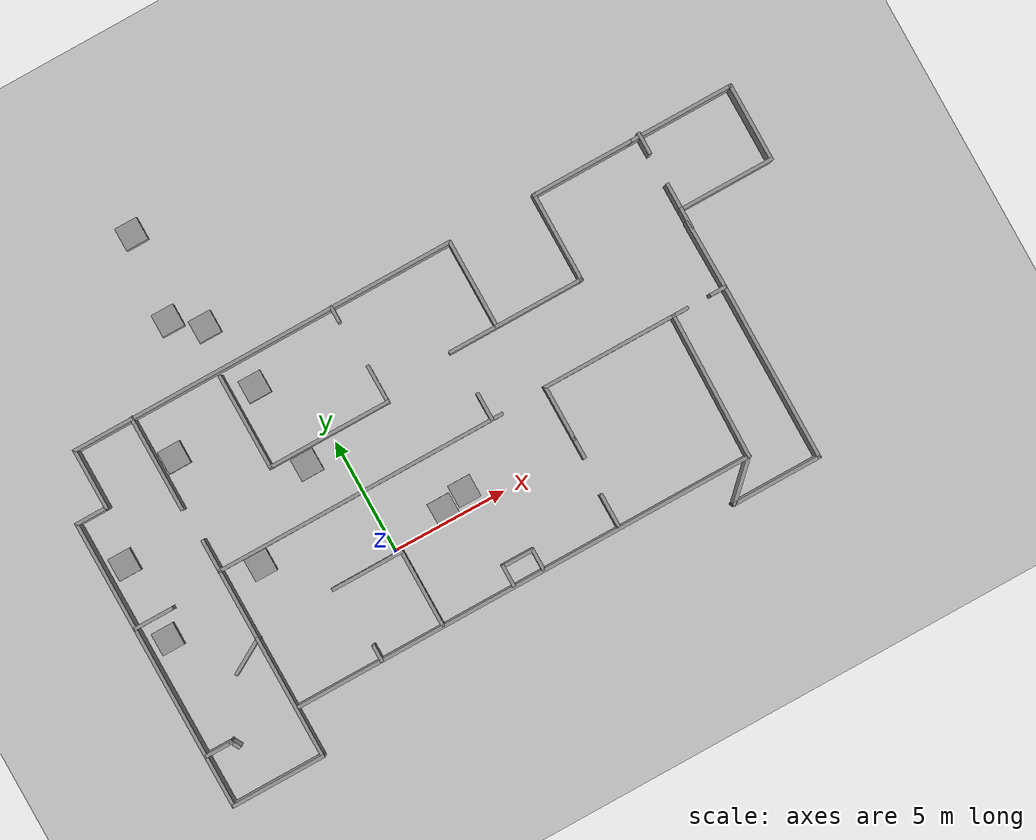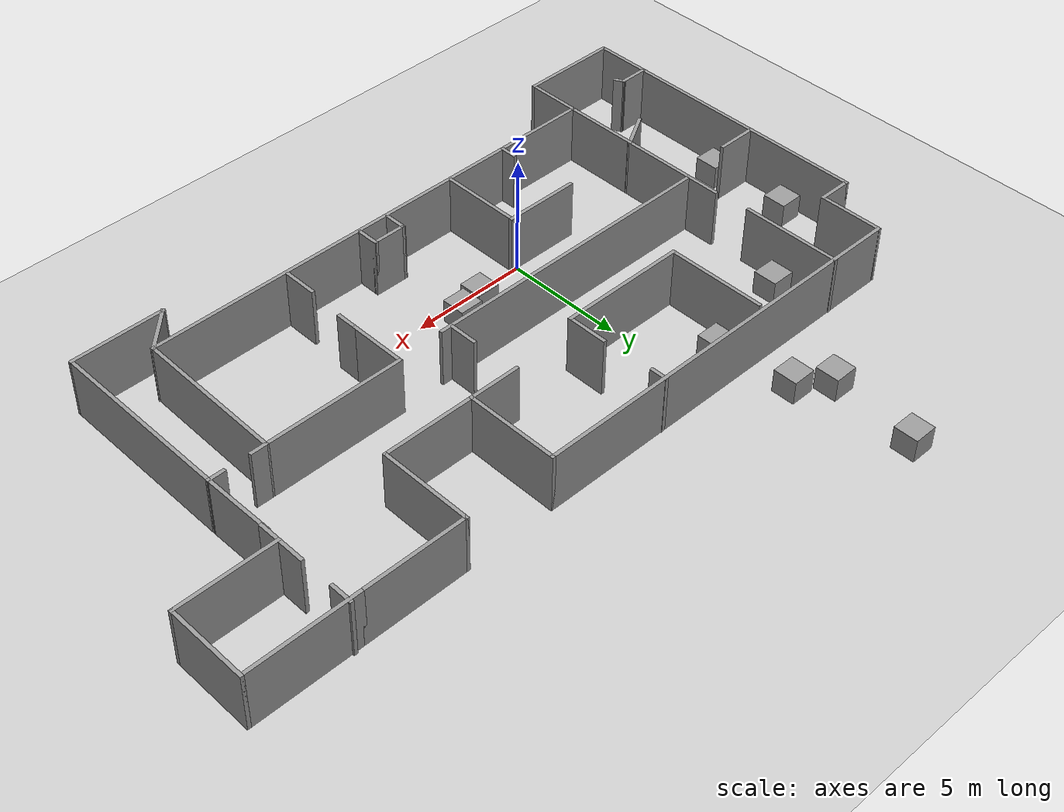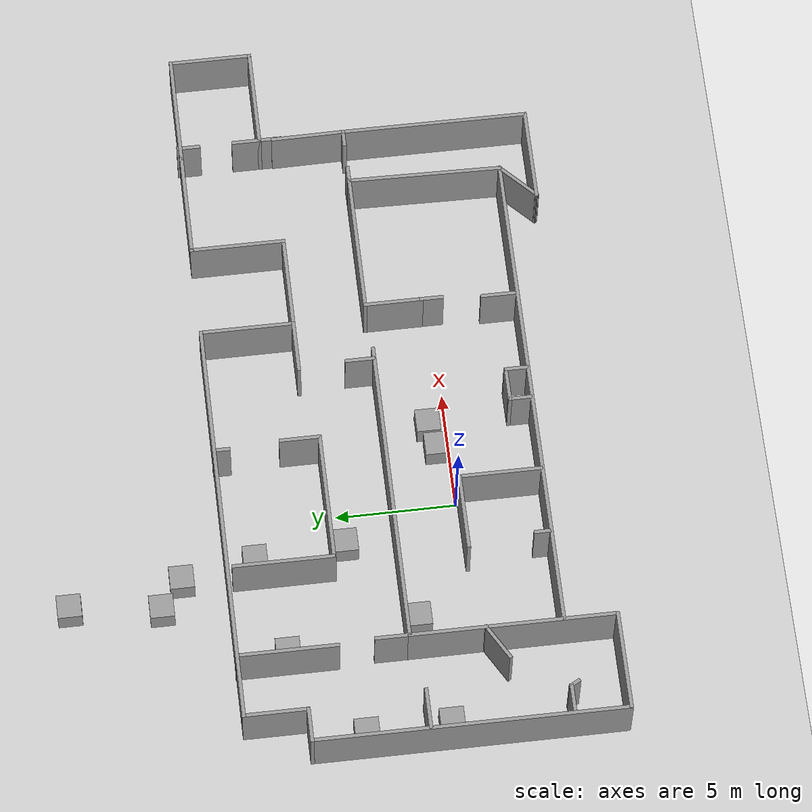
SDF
<sdf version="1.6">
 <world name="default">
  <model name="ground_plane">
   <static>1</static>
   <link name="link">
    <collision name="collision">
     <geometry><plane><normal>0 0 1</normal><size>100 100</size></plane></geometry>
     <surface>
      <contact><collide_bitmask>65535</collide_bitmask></contact>
      <friction><ode><mu>100</mu><mu2>50</mu2></ode></friction>
     </surface>
    </collision>
    <visual name="visual">
     <cast_shadows>0</cast_shadows>
     <geometry><plane><normal>0 0 1</normal><size>100 100</size></plane></geometry>
     <material>
      <script><uri>file://media/materials/scripts/gazebo.material</uri><name>Gazebo/Grey</name></script>
     </material>
    </visual>
   </link>
  </model>
  <model name="biggercustombuilding">
   <pose>5.06569 2.04944 0 0 -0 0</pose>
   <link name="Wall_11">
    <collision name="Wall_11_Collision">
     <geometry><box><size>13 0.15 2.5</size></box></geometry>
     <pose>0 0 1.25 0 -0 0</pose>
    </collision>
    <visual name="Wall_11_Visual">
     <pose>0 0 1.25 0 -0 0</pose>
     <geometry><box><size>13 0.15 2.5</size></box></geometry>
     <material>
      <script><uri>file://media/materials/scripts/gazebo.material</uri><name>Gazebo/Grey</name></script>
      <ambient>1 1 1 1</ambient>
     </material>
     <meta><layer>0</layer></meta>
    </visual>
    <pose>-5.13498 0.683866 0 0 -0 0</pose>
   </link>
   <link name="Wall_13">
    <collision name="Wall_13_Collision">
     <geometry><box><size>20.75 0.15 2.5</size></box></geometry>
     <pose>0 0 1.25 0 -0 0</pose>
    </collision>
    <visual name="Wall_13_Visual">
     <pose>0 0 1.25 0 -0 0</pose>
     <geometry><box><size>20.75 0.15 2.5</size></box></geometry>
     <material>
      <script><uri>file://media/materials/scripts/gazebo.material</uri><name>Gazebo/Grey</name></script>
      <ambient>1 1 1 1</ambient>
     </material>
     <meta><layer>0</layer></meta>
    </visual>
    <pose>-1.21261 -5.58002 0 0 -0 0</pose>
   </link>
   <link name="Wall_16">
    <collision name="Wall_16_Collision">
     <geometry><box><size>6.50087 0.15 2.5</size></box></geometry>
     <pose>0 0 1.25 0 -0 0</pose>
    </collision>
    <visual name="Wall_16_Visual">
     <pose>0 0 1.25 0 -0 0</pose>
     <geometry><box><size>6.50087 0.15 2.5</size></box></geometry>
     <material>
      <script><uri>file://media/materials/scripts/gazebo.material</uri><name>Gazebo/Grey</name></script>
      <ambient>1 1 1 1</ambient>
     </material>
     <meta><layer>0</layer></meta>
    </visual>
    <pose>9.1398 -2.3975 0 0 -0 -1.5873</pose>
   </link>
   <link name="Wall_18">
    <collision name="Wall_18_Collision">
     <geometry><box><size>2.13538 0.15 2.5</size></box></geometry>
     <pose>0 0 1.25 0 -0 0</pose>
    </collision>
    <visual name="Wall_18_Visual">
     <pose>0 0 1.25 0 -0 0</pose>
     <geometry><box><size>2.13538 0.15 2.5</size></box></geometry>
     <material>
      <script><uri>file://media/materials/scripts/gazebo.material</uri><name>Gazebo/Grey</name></script>
      <ambient>1 1 1 1</ambient>
     </material>
     <meta><layer>0</layer></meta>
    </visual>
    <pose>8.37795 -6.26685 0 0 -0 -2.36694</pose>
   </link>
   <link name="Wall_19">
    <collision name="Wall_19_Collision">
     <geometry><box><size>4 0.15 2.5</size></box></geometry>
     <pose>0 0 1.25 0 -0 0</pose>
    </collision>
    <visual name="Wall_19_Visual">
     <pose>0 0 1.25 0 -0 0</pose>
     <geometry><box><size>4 0.15 2.5</size></box></geometry>
     <material>
      <script><uri>file://media/materials/scripts/gazebo.material</uri><name>Gazebo/Grey</name></script>
      <ambient>1 1 1 1</ambient>
     </material>
     <meta><layer>0</layer></meta>
    </visual>
    <pose>9.59351 -6.9612 0 0 -0 0</pose>
   </link>
   <link name="Wall_20">
    <collision name="Wall_20_Collision">
     <geometry><box><size>7.88931 0.15 2.5</size></box></geometry>
     <pose>0 0 1.25 0 -0 0</pose>
    </collision>
    <visual name="Wall_20_Visual">
     <pose>0 0 1.25 0 -0 0</pose>
     <geometry><box><size>7.88931 0.15 2.5</size></box></geometry>
     <material>
      <script><uri>file://media/materials/scripts/gazebo.material</uri><name>Gazebo/Grey</name></script>
      <ambient>1 1 1 1</ambient>
     </material>
     <meta><layer>0</layer></meta>
    </visual>
    <pose>11.5257 -3.09155 0 0 -0 1.56892</pose>
   </link>
   <link name="Wall_21">
    <collision name="Wall_21_Collision">
     <geometry><box><size>0.75 0.15 2.5</size></box></geometry>
     <pose>0 0 1.25 0 -0 0</pose>
    </collision>
    <visual name="Wall_21_Visual">
     <pose>0 0 1.25 0 -0 0</pose>
     <geometry><box><size>0.75 0.15 2.5</size></box></geometry>
     <material>
      <script><uri>file://media/materials/scripts/gazebo.material</uri><name>Gazebo/Grey</name></script>
      <ambient>1 1 1 1</ambient>
     </material>
     <meta><layer>0</layer></meta>
    </visual>
    <pose>11.233 0.778097 0 0 -0 3.14159</pose>
   </link>
   <link name="Wall_23">
    <collision name="Wall_23_Collision">
     <geometry><box><size>0.75 0.15 2.5</size></box></geometry>
     <pose>0 0 1.25 0 -0 0</pose>
    </collision>
    <visual name="Wall_23_Visual">
     <pose>0 0 1.25 0 -0 0</pose>
     <geometry><box><size>0.75 0.15 2.5</size></box></geometry>
     <material>
      <script><uri>file://media/materials/scripts/gazebo.material</uri><name>Gazebo/Grey</name></script>
      <ambient>1 1 1 1</ambient>
     </material>
     <meta><layer>0</layer></meta>
    </visual>
    <pose>9.49221 0.777503 0 0 -0 0</pose>
   </link>
   <link name="Wall_25">
    <collision name="Wall_25_Collision">
     <geometry><box><size>1.5 0.15 2.5</size></box></geometry>
     <pose>0 0 1.25 0 -0 0</pose>
    </collision>
    <visual name="Wall_25_Visual">
     <pose>0 0 1.25 0 -0 0</pose>
     <geometry><box><size>1.5 0.15 2.5</size></box></geometry>
     <material>
      <script><uri>file://media/materials/scripts/gazebo.material</uri><name>Gazebo/Grey</name></script>
      <ambient>1 1 1 1</ambient>
     </material>
     <meta><layer>0</layer></meta>
    </visual>
    <pose>-14.95 5.08387 0 0 -0 0</pose>
   </link>
   <link name="Wall_26">
    <collision name="Wall_26_Collision">
     <geometry><box><size>2.75 0.15 2.5</size></box></geometry>
     <pose>0 0 1.25 0 -0 0</pose>
    </collision>
    <visual name="Wall_26_Visual">
     <pose>0 0 1.25 0 -0 0</pose>
     <geometry><box><size>2.75 0.15 2.5</size></box></geometry>
     <material>
      <script><uri>file://media/materials/scripts/gazebo.material</uri><name>Gazebo/Grey</name></script>
      <ambient>1 1 1 1</ambient>
     </material>
     <meta><layer>0</layer></meta>
    </visual>
    <pose>-14.275 6.38387 0 0 -0 1.5708</pose>
   </link>
   <link name="Wall_27">
    <collision name="Wall_27_Collision">
     <geometry><box><size>17.25 0.15 2.5</size></box></geometry>
     <pose>0 0 1.25 0 -0 0</pose>
    </collision>
    <visual name="Wall_27_Visual">
     <pose>0 0 1.25 0 -0 0</pose>
     <geometry><box><size>17.25 0.15 2.5</size></box></geometry>
     <material>
      <script><uri>file://media/materials/scripts/gazebo.material</uri><name>Gazebo/Grey</name></script>
      <ambient>1 1 1 1</ambient>
     </material>
     <meta><layer>0</layer></meta>
    </visual>
    <pose>-5.725 7.68387 0 0 -0 0</pose>
   </link>
   <link name="Wall_28">
    <collision name="Wall_28_Collision">
     <geometry><box><size>4 0.15 2.5</size></box></geometry>
     <pose>0 0 1.25 0 -0 0</pose>
    </collision>
    <visual name="Wall_28_Visual">
     <pose>0 0 1.25 0 -0 0</pose>
     <geometry><box><size>4 0.15 2.5</size></box></geometry>
     <material>
      <script><uri>file://media/materials/scripts/gazebo.material</uri><name>Gazebo/Grey</name></script>
      <ambient>1 1 1 1</ambient>
     </material>
     <meta><layer>0</layer></meta>
    </visual>
    <pose>2.825 5.75887 0 0 -0 -1.5708</pose>
   </link>
   <link name="Wall_29">
    <collision name="Wall_29_Collision">
     <geometry><box><size>4 0.15 2.5</size></box></geometry>
     <pose>0 0 1.25 0 -0 0</pose>
    </collision>
    <visual name="Wall_29_Visual">
     <pose>0 0 1.25 0 -0 0</pose>
     <geometry><box><size>4 0.15 2.5</size></box></geometry>
     <material>
      <script><uri>file://media/materials/scripts/gazebo.material</uri><name>Gazebo/Grey</name></script>
      <ambient>1 1 1 1</ambient>
     </material>
     <meta><layer>0</layer></meta>
    </visual>
    <pose>4.75 3.83387 0 0 -0 0</pose>
   </link>
   <link name="Wall_30">
    <collision name="Wall_30_Collision">
     <geometry><box><size>4 0.15 2.5</size></box></geometry>
     <pose>0 0 1.25 0 -0 0</pose>
    </collision>
    <visual name="Wall_30_Visual">
     <pose>0 0 1.25 0 -0 0</pose>
     <geometry><box><size>4 0.15 2.5</size></box></geometry>
     <material>
      <script><uri>file://media/materials/scripts/gazebo.material</uri><name>Gazebo/Grey</name></script>
      <ambient>1 1 1 1</ambient>
     </material>
     <meta><layer>0</layer></meta>
    </visual>
    <pose>6.675 5.75887 0 0 -0 1.5708</pose>
   </link>
   <link name="Wall_34">
    <collision name="Wall_34_Collision">
     <geometry><box><size>1.5 0.15 2.5</size></box></geometry>
     <pose>0 0 1.25 0 -0 0</pose>
    </collision>
    <visual name="Wall_34_Visual">
     <pose>0 0 1.25 0 -0 0</pose>
     <geometry><box><size>1.5 0.15 2.5</size></box></geometry>
     <material>
      <script><uri>file://media/materials/scripts/gazebo.material</uri><name>Gazebo/Grey</name></script>
      <ambient>1 1 1 1</ambient>
     </material>
     <meta><layer>0</layer></meta>
    </visual>
    <pose>-11.56 1.35887 0 0 -0 1.5708</pose>
   </link>
   <link name="Wall_36">
    <collision name="Wall_36_Collision">
     <geometry><box><size>4.25 0.15 2.5</size></box></geometry>
     <pose>0 0 1.25 0 -0 0</pose>
    </collision>
    <visual name="Wall_36_Visual">
     <pose>0 0 1.25 0 -0 0</pose>
     <geometry><box><size>4.25 0.15 2.5</size></box></geometry>
     <material>
      <script><uri>file://media/materials/scripts/gazebo.material</uri><name>Gazebo/Grey</name></script>
      <ambient>1 1 1 1</ambient>
     </material>
     <meta><layer>0</layer></meta>
    </visual>
    <pose>-11.6733 5.65578 0 0 -0 1.5708</pose>
   </link>
   <link name="Wall_4">
    <collision name="Wall_4_Collision">
     <geometry><box><size>13 0.15 2.5</size></box></geometry>
     <pose>0 0 1.25 0 -0 0</pose>
    </collision>
    <visual name="Wall_4_Visual">
     <pose>0 0 1.25 0 -0 0</pose>
     <geometry><box><size>13 0.15 2.5</size></box></geometry>
     <material>
      <script><uri>file://media/materials/scripts/gazebo.material</uri><name>Gazebo/Grey</name></script>
      <ambient>1 1 1 1</ambient>
     </material>
     <meta><layer>0</layer></meta>
    </visual>
    <pose>-15.625 -1.34113 0 0 -0 -1.5708</pose>
   </link>
   <link name="Wall_5">
    <collision name="Wall_5_Collision">
     <geometry><box><size>4.18004 0.15 2.5</size></box></geometry>
     <pose>0 0 1.25 0 -0 0</pose>
    </collision>
    <visual name="Wall_5_Visual">
     <pose>0 0 1.25 0 -0 0</pose>
     <geometry><box><size>4.18004 0.15 2.5</size></box></geometry>
     <material>
      <script><uri>file://media/materials/scripts/gazebo.material</uri><name>Gazebo/Grey</name></script>
      <ambient>1 1 1 1</ambient>
     </material>
     <meta><layer>0</layer></meta>
    </visual>
    <pose>-13.575 -7.76613 0 0 -0 0</pose>
   </link>
   <link name="Wall_51">
    <collision name="Wall_51_Collision">
     <geometry><box><size>3.1258 0.15 2.5</size></box></geometry>
     <pose>0 0 1.25 0 -0 0</pose>
    </collision>
    <visual name="Wall_51_Visual">
     <pose>0 0 1.25 0 -0 0</pose>
     <geometry><box><size>3.1258 0.15 2.5</size></box></geometry>
     <material>
      <script><uri>file://media/materials/scripts/gazebo.material</uri><name>Gazebo/Grey</name></script>
      <ambient>1 1 1 1</ambient>
     </material>
     <meta><layer>0</layer></meta>
    </visual>
    <pose>11.5158 2.2659 0 0 -0 -1.55925</pose>
   </link>
   <link name="Wall_53">
    <collision name="Wall_53_Collision">
     <geometry><box><size>4.5 0.15 2.5</size></box></geometry>
     <pose>0 0 1.25 0 -0 0</pose>
    </collision>
    <visual name="Wall_53_Visual">
     <pose>0 0 1.25 0 -0 0</pose>
     <geometry><box><size>4.5 0.15 2.5</size></box></geometry>
     <material>
      <script><uri>file://media/materials/scripts/gazebo.material</uri><name>Gazebo/Grey</name></script>
      <ambient>1 1 1 1</ambient>
     </material>
     <meta><layer>0</layer></meta>
    </visual>
    <pose>8.85 7.68387 0 0 -0 0</pose>
   </link>
   <link name="Wall_55">
    <collision name="Wall_55_Collision">
     <geometry><box><size>4.25 0.15 2.5</size></box></geometry>
     <pose>0 0 1.25 0 -0 0</pose>
    </collision>
    <visual name="Wall_55_Visual">
     <pose>0 0 1.25 0 -0 0</pose>
     <geometry><box><size>4.25 0.15 2.5</size></box></geometry>
     <material>
      <script><uri>file://media/materials/scripts/gazebo.material</uri><name>Gazebo/Grey</name></script>
      <ambient>1 1 1 1</ambient>
     </material>
     <meta><layer>0</layer></meta>
    </visual>
    <pose>-7.7808 5.37127 0 0 -0 -1.5708</pose>
   </link>
   <link name="Wall_56">
    <collision name="Wall_56_Collision">
     <geometry><box><size>5.5 0.15 2.5</size></box></geometry>
     <pose>0 0 1.25 0 -0 0</pose>
    </collision>
    <visual name="Wall_56_Visual">
     <pose>0 0 1.25 0 -0 0</pose>
     <geometry><box><size>5.5 0.15 2.5</size></box></geometry>
     <material>
      <script><uri>file://media/materials/scripts/gazebo.material</uri><name>Gazebo/Grey</name></script>
      <ambient>1 1 1 1</ambient>
     </material>
     <meta><layer>0</layer></meta>
    </visual>
    <pose>-5.1058 3.32127 0 0 -0 0</pose>
   </link>
   <link name="Wall_57">
    <collision name="Wall_57_Collision">
     <geometry><box><size>1.75 0.15 2.5</size></box></geometry>
     <pose>0 0 1.25 0 -0 0</pose>
    </collision>
    <visual name="Wall_57_Visual">
     <pose>0 0 1.25 0 -0 0</pose>
     <geometry><box><size>1.75 0.15 2.5</size></box></geometry>
     <material>
      <script><uri>file://media/materials/scripts/gazebo.material</uri><name>Gazebo/Grey</name></script>
      <ambient>1 1 1 1</ambient>
     </material>
     <meta><layer>0</layer></meta>
    </visual>
    <pose>-2.4308 4.12127 0 0 -0 1.5708</pose>
   </link>
   <link name="Wall_59">
    <collision name="Wall_59_Collision">
     <geometry><box><size>0.75 0.15 2.5</size></box></geometry>
     <pose>0 0 1.25 0 -0 0</pose>
    </collision>
    <visual name="Wall_59_Visual">
     <pose>0 0 1.25 0 -0 0</pose>
     <geometry><box><size>0.75 0.15 2.5</size></box></geometry>
     <material>
      <script><uri>file://media/materials/scripts/gazebo.material</uri><name>Gazebo/Grey</name></script>
      <ambient>1 1 1 1</ambient>
     </material>
     <meta><layer>0</layer></meta>
    </visual>
    <pose>-2.57012 7.40041 0 0 -0 -1.5708</pose>
   </link>
   <link name="Wall_6">
    <collision name="Wall_6_Collision">
     <geometry><box><size>5.5 0.15 2.5</size></box></geometry>
     <pose>0 0 1.25 0 -0 0</pose>
    </collision>
    <visual name="Wall_6_Visual">
     <pose>0 0 1.25 0 -0 0</pose>
     <geometry><box><size>5.5 0.15 2.5</size></box></geometry>
     <material>
      <script><uri>file://media/materials/scripts/gazebo.material</uri><name>Gazebo/Grey</name></script>
      <ambient>1 1 1 1</ambient>
     </material>
     <meta><layer>0</layer></meta>
    </visual>
    <pose>-11.56 -5.09113 0 0 -0 1.5708</pose>
   </link>
   <link name="Wall_61">
    <collision name="Wall_61_Collision">
     <geometry><box><size>3.5 0.15 2.5</size></box></geometry>
     <pose>0 0 1.25 0 -0 0</pose>
    </collision>
    <visual name="Wall_61_Visual">
     <pose>0 0 1.25 0 -0 0</pose>
     <geometry><box><size>3.5 0.15 2.5</size></box></geometry>
     <material>
      <script><uri>file://media/materials/scripts/gazebo.material</uri><name>Gazebo/Grey</name></script>
      <ambient>1 1 1 1</ambient>
     </material>
     <meta><layer>0</layer></meta>
    </visual>
    <pose>-4.8498 -3.83738 0 0 -0 1.5708</pose>
   </link>
   <link name="Wall_62">
    <collision name="Wall_62_Collision">
     <geometry><box><size>3.25 0.15 2.5</size></box></geometry>
     <pose>0 0 1.25 0 -0 0</pose>
    </collision>
    <visual name="Wall_62_Visual">
     <pose>0 0 1.25 0 -0 0</pose>
     <geometry><box><size>3.25 0.15 2.5</size></box></geometry>
     <material>
      <script><uri>file://media/materials/scripts/gazebo.material</uri><name>Gazebo/Grey</name></script>
      <ambient>1 1 1 1</ambient>
     </material>
     <meta><layer>0</layer></meta>
    </visual>
    <pose>-6.3998 -2.16238 0 0 -0 3.14159</pose>
   </link>
   <link name="Wall_64">
    <collision name="Wall_64_Collision">
     <geometry><box><size>1.5 0.15 2.5</size></box></geometry>
     <pose>0 0 1.25 0 -0 0</pose>
    </collision>
    <visual name="Wall_64_Visual">
     <pose>0 0 1.25 0 -0 0</pose>
     <geometry><box><size>1.5 0.15 2.5</size></box></geometry>
     <material>
      <script><uri>file://media/materials/scripts/gazebo.material</uri><name>Gazebo/Grey</name></script>
      <ambient>1 1 1 1</ambient>
     </material>
     <meta><layer>0</layer></meta>
    </visual>
    <pose>3.19884 -4.79085 0 0 -0 1.5708</pose>
   </link>
   <link name="Wall_66">
    <collision name="Wall_66_Collision">
     <geometry><box><size>6 0.15 2.5</size></box></geometry>
     <pose>0 0 1.25 0 -0 0</pose>
    </collision>
    <visual name="Wall_66_Visual">
     <pose>0 0 1.25 0 -0 0</pose>
     <geometry><box><size>6 0.15 2.5</size></box></geometry>
     <material>
      <script><uri>file://media/materials/scripts/gazebo.material</uri><name>Gazebo/Grey</name></script>
      <ambient>1 1 1 1</ambient>
     </material>
     <meta><layer>0</layer></meta>
    </visual>
    <pose>6.26721 0.777503 0 0 -0 3.14159</pose>
   </link>
   <link name="Wall_67">
    <collision name="Wall_67_Collision">
     <geometry><box><size>2.5 0.15 2.5</size></box></geometry>
     <pose>0 0 1.25 0 -0 0</pose>
    </collision>
    <visual name="Wall_67_Visual">
     <pose>0 0 1.25 0 -0 0</pose>
     <geometry><box><size>2.5 0.15 2.5</size></box></geometry>
     <material>
      <script><uri>file://media/materials/scripts/gazebo.material</uri><name>Gazebo/Grey</name></script>
      <ambient>1 1 1 1</ambient>
     </material>
     <meta><layer>0</layer></meta>
    </visual>
    <pose>3.34221 -0.397497 0 0 -0 -1.5708</pose>
   </link>
   <link name="Wall_68">
    <collision name="Wall_68_Collision">
     <geometry><box><size>1 0.15 2.5</size></box></geometry>
     <pose>0 0 1.25 0 -0 0</pose>
    </collision>
    <visual name="Wall_68_Visual">
     <pose>0 0 1.25 0 -0 0</pose>
     <geometry><box><size>1 0.15 2.5</size></box></geometry>
     <material>
      <script><uri>file://media/materials/scripts/gazebo.material</uri><name>Gazebo/Grey</name></script>
      <ambient>1 1 1 1</ambient>
     </material>
     <meta><layer>0</layer></meta>
    </visual>
    <pose>3.34221 -1.9975 0 0 -0 -1.5708</pose>
   </link>
   <link name="Wall_7">
    <collision name="Wall_7_Collision">
     <geometry><box><size>3.25 0.15 2.5</size></box></geometry>
     <pose>0 0 1.25 0 -0 0</pose>
    </collision>
    <visual name="Wall_7_Visual">
     <pose>0 0 1.25 0 -0 0</pose>
     <geometry><box><size>3.25 0.15 2.5</size></box></geometry>
     <material>
      <script><uri>file://media/materials/scripts/gazebo.material</uri><name>Gazebo/Grey</name></script>
      <ambient>1 1 1 1</ambient>
     </material>
     <meta><layer>0</layer></meta>
    </visual>
    <pose>-11.56 -0.866134 0 0 -0 1.5708</pose>
   </link>
   <link name="Wall_70">
    <collision name="Wall_70_Collision">
     <geometry><box><size>1.75 0.15 2.5</size></box></geometry>
     <pose>0 0 1.25 0 -0 0</pose>
    </collision>
    <visual name="Wall_70_Visual">
     <pose>0 0 1.25 0 -0 0</pose>
     <geometry><box><size>1.75 0.15 2.5</size></box></geometry>
     <material>
      <script><uri>file://media/materials/scripts/gazebo.material</uri><name>Gazebo/Grey</name></script>
      <ambient>1 1 1 1</ambient>
     </material>
     <meta><layer>0</layer></meta>
    </visual>
    <pose>-14.7784 0.307579 0 0 -0 0</pose>
   </link>
   <link name="Wall_72">
    <collision name="Wall_72_Collision">
     <geometry><box><size>4.75 0.15 2.5</size></box></geometry>
     <pose>0 0 1.25 0 -0 0</pose>
    </collision>
    <visual name="Wall_72_Visual">
     <pose>0 0 1.25 0 -0 0</pose>
     <geometry><box><size>4.75 0.15 2.5</size></box></geometry>
     <material>
      <script><uri>file://media/materials/scripts/gazebo.material</uri><name>Gazebo/Grey</name></script>
      <ambient>1 1 1 1</ambient>
     </material>
     <meta><layer>0</layer></meta>
    </visual>
    <pose>13.325 7.68387 0 0 -0 0</pose>
   </link>
   <link name="Wall_73">
    <collision name="Wall_73_Collision">
     <geometry><box><size>3.5 0.15 2.5</size></box></geometry>
     <pose>0 0 1.25 0 -0 0</pose>
    </collision>
    <visual name="Wall_73_Visual">
     <pose>0 0 1.25 0 -0 0</pose>
     <geometry><box><size>3.5 0.15 2.5</size></box></geometry>
     <material>
      <script><uri>file://media/materials/scripts/gazebo.material</uri><name>Gazebo/Grey</name></script>
      <ambient>1 1 1 1</ambient>
     </material>
     <meta><layer>0</layer></meta>
    </visual>
    <pose>15.625 6.00887 0 0 -0 -1.5708</pose>
   </link>
   <link name="Wall_74">
    <collision name="Wall_74_Collision">
     <geometry><box><size>4.25 0.15 2.5</size></box></geometry>
     <pose>0 0 1.25 0 -0 0</pose>
    </collision>
    <visual name="Wall_74_Visual">
     <pose>0 0 1.25 0 -0 0</pose>
     <geometry><box><size>4.25 0.15 2.5</size></box></geometry>
     <material>
      <script><uri>file://media/materials/scripts/gazebo.material</uri><name>Gazebo/Grey</name></script>
      <ambient>1 1 1 1</ambient>
     </material>
     <meta><layer>0</layer></meta>
    </visual>
    <pose>13.575 4.33387 0 0 -0 3.14159</pose>
   </link>
   <link name="Wall_75">
    <collision name="Wall_75_Collision">
     <geometry><box><size>1 0.15 2.5</size></box></geometry>
     <pose>0 0 1.25 0 -0 0</pose>
    </collision>
    <visual name="Wall_75_Visual">
     <pose>0 0 1.25 0 -0 0</pose>
     <geometry><box><size>1 0.15 2.5</size></box></geometry>
     <material>
      <script><uri>file://media/materials/scripts/gazebo.material</uri><name>Gazebo/Grey</name></script>
      <ambient>1 1 1 1</ambient>
     </material>
     <meta><layer>0</layer></meta>
    </visual>
    <pose>11.525 3.90887 0 0 -0 -1.5708</pose>
   </link>
   <link name="Wall_77">
    <collision name="Wall_77_Collision">
     <geometry><box><size>1.25 0.15 2.5</size></box></geometry>
     <pose>0 0 1.25 0 -0 0</pose>
    </collision>
    <visual name="Wall_77_Visual">
     <pose>0 0 1.25 0 -0 0</pose>
     <geometry><box><size>1.25 0.15 2.5</size></box></geometry>
     <material>
      <script><uri>file://media/materials/scripts/gazebo.material</uri><name>Gazebo/Grey</name></script>
      <ambient>1 1 1 1</ambient>
     </material>
     <meta><layer>0</layer></meta>
    </visual>
    <pose>11.525 4.88387 0 0 -0 1.5708</pose>
   </link>
   <link name="Wall_79">
    <collision name="Wall_79_Collision">
     <geometry><box><size>1 0.15 2.5</size></box></geometry>
     <pose>0 0 1.25 0 -0 0</pose>
    </collision>
    <visual name="Wall_79_Visual">
     <pose>0 0 1.25 0 -0 0</pose>
     <geometry><box><size>1 0.15 2.5</size></box></geometry>
     <material>
      <script><uri>file://media/materials/scripts/gazebo.material</uri><name>Gazebo/Grey</name></script>
      <ambient>1 1 1 1</ambient>
     </material>
     <meta><layer>0</layer></meta>
    </visual>
    <pose>11.51 7.34114 0 0 -0 -1.5708</pose>
   </link>
   <link name="Wall_81">
    <collision name="Wall_81_Collision">
     <geometry><box><size>2.25 0.15 2.5</size></box></geometry>
     <pose>0 0 1.25 0 -0 0</pose>
    </collision>
    <visual name="Wall_81_Visual">
     <pose>0 0 1.25 0 -0 0</pose>
     <geometry><box><size>2.25 0.15 2.5</size></box></geometry>
     <material>
      <script><uri>file://media/materials/scripts/gazebo.material</uri><name>Gazebo/Grey</name></script>
      <ambient>1 1 1 1</ambient>
     </material>
     <meta><layer>0</layer></meta>
    </visual>
    <pose>1.775 3.83387 0 0 -0 3.14159</pose>
   </link>
   <link name="Wall_83">
    <collision name="Wall_83_Collision">
     <geometry><box><size>1.25 0.15 2.5</size></box></geometry>
     <pose>0 0 1.25 0 -0 0</pose>
    </collision>
    <visual name="Wall_83_Visual">
     <pose>0 0 1.25 0 -0 0</pose>
     <geometry><box><size>1.25 0.15 2.5</size></box></geometry>
     <material>
      <script><uri>file://media/materials/scripts/gazebo.material</uri><name>Gazebo/Grey</name></script>
      <ambient>1 1 1 1</ambient>
     </material>
     <meta><layer>0</layer></meta>
    </visual>
    <pose>0.859523 1.28257 0 0 -0 1.5708</pose>
   </link>
   <link name="Wall_85">
    <collision name="Wall_85_Collision">
     <geometry><box><size>1.25 0.15 2.5</size></box></geometry>
     <pose>0 0 1.25 0 -0 0</pose>
    </collision>
    <visual name="Wall_85_Visual">
     <pose>0 0 1.25 0 -0 0</pose>
     <geometry><box><size>1.25 0.15 2.5</size></box></geometry>
     <material>
      <script><uri>file://media/materials/scripts/gazebo.material</uri><name>Gazebo/Grey</name></script>
      <ambient>1 1 1 1</ambient>
     </material>
     <meta><layer>0</layer></meta>
    </visual>
    <pose>-15.0134 -5.50164 0 0 -0 0</pose>
   </link>
   <link name="Wall_86">
    <collision name="Wall_86_Collision">
     <geometry><box><size>0.5 0.15 2.5</size></box></geometry>
     <pose>0 0 1.25 0 -0 0</pose>
    </collision>
    <visual name="Wall_86_Visual">
     <pose>0 0 1.25 0 -0 0</pose>
     <geometry><box><size>0.5 0.15 2.5</size></box></geometry>
     <material>
      <script><uri>file://media/materials/scripts/gazebo.material</uri><name>Gazebo/Grey</name></script>
      <ambient>1 1 1 1</ambient>
     </material>
     <meta><layer>0</layer></meta>
    </visual>
    <pose>-14.3759 -5.65319 0 0 -0 -1.0472</pose>
   </link>
   <link name="Wall_88">
    <collision name="Wall_88_Collision">
     <geometry><box><size>0.75 0.15 2.5</size></box></geometry>
     <pose>0 0 1.25 0 -0 0</pose>
    </collision>
    <visual name="Wall_88_Visual">
     <pose>0 0 1.25 0 -0 0</pose>
     <geometry><box><size>0.75 0.15 2.5</size></box></geometry>
     <material>
      <script><uri>file://media/materials/scripts/gazebo.material</uri><name>Gazebo/Grey</name></script>
      <ambient>1 1 1 1</ambient>
     </material>
     <meta><layer>0</layer></meta>
    </visual>
    <pose>-7.65435 -5.24816 0 0 -0 1.5708</pose>
   </link>
   <link name="Wall_9">
    <collision name="Wall_9_Collision">
     <geometry><box><size>1.75 0.15 2.5</size></box></geometry>
     <pose>0 0 1.25 0 -0 0</pose>
    </collision>
    <visual name="Wall_9_Visual">
     <pose>0 0 1.25 0 -0 0</pose>
     <geometry><box><size>1.75 0.15 2.5</size></box></geometry>
     <material>
      <script><uri>file://media/materials/scripts/gazebo.material</uri><name>Gazebo/Grey</name></script>
      <ambient>1 1 1 1</ambient>
     </material>
     <meta><layer>0</layer></meta>
    </visual>
    <pose>-12.2528 -2.81613 0 0 -0 -2.61799</pose>
   </link>
   <link name="Wall_90">
    <collision name="Wall_90_Collision">
     <geometry><box><size>1 0.15 2.5</size></box></geometry>
     <pose>0 0 1.25 0 -0 0</pose>
    </collision>
    <visual name="Wall_90_Visual">
     <pose>0 0 1.25 0 -0 0</pose>
     <geometry><box><size>1 0.15 2.5</size></box></geometry>
     <material>
      <script><uri>file://media/materials/scripts/gazebo.material</uri><name>Gazebo/Grey</name></script>
      <ambient>1 1 1 1</ambient>
     </material>
     <meta><layer>0</layer></meta>
    </visual>
    <pose>-1.60624 -5.07663 0 0 -0 1.5708</pose>
   </link>
   <link name="Wall_91">
    <collision name="Wall_91_Collision">
     <geometry><box><size>1.5 0.15 2.5</size></box></geometry>
     <pose>0 0 1.25 0 -0 0</pose>
    </collision>
    <visual name="Wall_91_Visual">
     <pose>0 0 1.25 0 -0 0</pose>
     <geometry><box><size>1.5 0.15 2.5</size></box></geometry>
     <material>
      <script><uri>file://media/materials/scripts/gazebo.material</uri><name>Gazebo/Grey</name></script>
      <ambient>1 1 1 1</ambient>
     </material>
     <meta><layer>0</layer></meta>
    </visual>
    <pose>-0.931244 -4.65163 0 0 -0 0</pose>
   </link>
   <link name="Wall_92">
    <collision name="Wall_92_Collision">
     <geometry><box><size>1 0.15 2.5</size></box></geometry>
     <pose>0 0 1.25 0 -0 0</pose>
    </collision>
    <visual name="Wall_92_Visual">
     <pose>0 0 1.25 0 -0 0</pose>
     <geometry><box><size>1 0.15 2.5</size></box></geometry>
     <material>
      <script><uri>file://media/materials/scripts/gazebo.material</uri><name>Gazebo/Grey</name></script>
      <ambient>1 1 1 1</ambient>
     </material>
     <meta><layer>0</layer></meta>
    </visual>
    <pose>-0.256244 -5.07663 0 0 -0 -1.5708</pose>
   </link>
   <static>1</static>
  </model>
  <model name="unit_box_1">
   <pose>2.49299 0.525117 0.499995 0 -1e-05 0</pose>
   <link name="link">
    <inertial>
     <mass>1</mass>
     <inertia>
      <ixx>0.166667</ixx>
      <ixy>0</ixy>
      <ixz>0</ixz>
      <iyy>0.166667</iyy>
      <iyz>0</iyz>
      <izz>0.166667</izz>
     </inertia>
    </inertial>
    <collision name="collision"><geometry><box><size>1 1 1</size></box></geometry></collision>
    <visual name="visual">
     <geometry><box><size>1 1 1</size></box></geometry>
     <material>
      <script><name>Gazebo/Grey</name><uri>file://media/materials/scripts/gazebo.material</uri></script>
     </material>
    </visual>
   </link>
  </model>
  <model name="unit_box_2">
   <pose>3.57267 0.769333 0.499995 -1e-05 -0 -0</pose>
   <link name="link">
    <inertial>
     <mass>1</mass>
     <inertia>
      <ixx>0.166667</ixx>
      <ixy>0</ixy>
      <ixz>0</ixz>
      <iyy>0.166667</iyy>
      <iyz>0</iyz>
      <izz>0.166667</izz>
     </inertia>
    </inertial>
    <collision name="collision"><geometry><box><size>1 1 1</size></box></geometry></collision>
    <visual name="visual">
     <geometry><box><size>1 1 1</size></box></geometry>
     <material>
      <script><name>Gazebo/Grey</name><uri>file://media/materials/scripts/gazebo.material</uri></script>
     </material>
    </visual>
   </link>
  </model>
  <model name="unit_box_3">
   <pose>-1.73874 8.52097 0.499995 0 -1e-05 0</pose>
   <link name="link">
    <inertial>
     <mass>1</mass>
     <inertia>
      <ixx>0.166667</ixx>
      <ixy>0</ixy>
      <ixz>0</ixz>
      <iyy>0.166667</iyy>
      <iyz>0</iyz>
      <izz>0.166667</izz>
     </inertia>
    </inertial>
    <collision name="collision"><geometry><box><size>1 1 1</size></box></geometry></collision>
    <visual name="visual">
     <geometry><box><size>1 1 1</size></box></geometry>
     <material>
      <script><name>Gazebo/Grey</name><uri>file://media/materials/scripts/gazebo.material</uri></script>
     </material>
    </visual>
   </link>
  </model>
  <model name="unit_box_6">
   <pose>-3.4936 12.5318 0.499995 0 1e-05 0</pose>
   <link name="link">
    <inertial>
     <mass>1</mass>
     <inertia>
      <ixx>0.166667</ixx>
      <ixy>0</ixy>
      <ixz>0</ixz>
      <iyy>0.166667</iyy>
      <iyz>0</iyz>
      <izz>0.166667</izz>
     </inertia>
    </inertial>
    <collision name="collision"><geometry><box><size>1 1 1</size></box></geometry></collision>
    <visual name="visual">
     <geometry><box><size>1 1 1</size></box></geometry>
     <material>
      <script><name>Gazebo/Grey</name><uri>file://media/materials/scripts/gazebo.material</uri></script>
     </material>
    </visual>
   </link>
  </model>
  <model name="unit_box_7">
   <pose>-2.3122 11.5984 0.499995 -1e-05 -0 -0</pose>
   <link name="link">
    <inertial>
     <mass>1</mass>
     <inertia>
      <ixx>0.166667</ixx>
      <ixy>0</ixy>
      <ixz>0</ixz>
      <iyy>0.166667</iyy>
      <iyz>0</iyz>
      <izz>0.166667</izz>
     </inertia>
    </inertial>
    <collision name="collision"><geometry><box><size>1 1 1</size></box></geometry></collision>
    <visual name="visual">
     <geometry><box><size>1 1 1</size></box></geometry>
     <material>
      <script><name>Gazebo/Grey</name><uri>file://media/materials/scripts/gazebo.material</uri></script>
     </material>
    </visual>
   </link>
  </model>
  <model name="unit_box_8">
   <pose>-3.08006 16.2752 0.499995 0 1e-05 0</pose>
   <link name="link">
    <inertial>
     <mass>1</mass>
     <inertia>
      <ixx>0.166667</ixx>
      <ixy>0</ixy>
      <ixz>0</ixz>
      <iyy>0.166667</iyy>
      <iyz>0</iyz>
      <izz>0.166667</izz>
     </inertia>
    </inertial>
    <collision name="collision"><geometry><box><size>1 1 1</size></box></geometry></collision>
    <visual name="visual">
     <geometry><box><size>1 1 1</size></box></geometry>
     <material>
      <script><name>Gazebo/Grey</name><uri>file://media/materials/scripts/gazebo.material</uri></script>
     </material>
    </visual>
   </link>
  </model>
  <model name="unit_box_9">
   <pose>-9.77125 4.82622 0.499995 -1e-05 -0 -0</pose>
   <link name="link">
    <inertial>
     <mass>1</mass>
     <inertia>
      <ixx>0.166667</ixx>
      <ixy>0</ixy>
      <ixz>0</ixz>
      <iyy>0.166667</iyy>
      <iyz>0</iyz>
      <izz>0.166667</izz>
     </inertia>
    </inertial>
    <collision name="collision"><geometry><box><size>1 1 1</size></box></geometry></collision>
    <visual name="visual">
     <geometry><box><size>1 1 1</size></box></geometry>
     <material>
      <script><name>Gazebo/Grey</name><uri>file://media/materials/scripts/gazebo.material</uri></script>
     </material>
    </visual>
   </link>
  </model>
  <model name="unit_box_10">
   <pose>-5.93811 7.61017 0.499995 0 1e-05 0</pose>
   <link name="link">
    <inertial>
     <mass>1</mass>
     <inertia>
      <ixx>0.166667</ixx>
      <ixy>0</ixy>
      <ixz>0</ixz>
      <iyy>0.166667</iyy>
      <iyz>0</iyz>
      <izz>0.166667</izz>
     </inertia>
    </inertial>
    <collision name="collision"><geometry><box><size>1 1 1</size></box></geometry></collision>
    <visual name="visual">
     <geometry><box><size>1 1 1</size></box></geometry>
     <material>
      <script><name>Gazebo/Grey</name><uri>file://media/materials/scripts/gazebo.material</uri></script>
     </material>
    </visual>
   </link>
  </model>
  <model name="unit_box_11">
   <pose>-1.42643 4.76358 0.499995 -1e-05 -0 -0</pose>
   <link name="link">
    <inertial>
     <mass>1</mass>
     <inertia>
      <ixx>0.166667</ixx>
      <ixy>0</ixy>
      <ixz>0</ixz>
      <iyy>0.166667</iyy>
      <iyz>0</iyz>
      <izz>0.166667</izz>
     </inertia>
    </inertial>
    <collision name="collision"><geometry><box><size>1 1 1</size></box></geometry></collision>
    <visual name="visual">
     <geometry><box><size>1 1 1</size></box></geometry>
     <material>
      <script><name>Gazebo/Grey</name><uri>file://media/materials/scripts/gazebo.material</uri></script>
     </material>
    </visual>
   </link>
  </model>
  <model name="unit_box_14">
   <pose>-5.00809 2.14725 0.499995 0 1e-05 0</pose>
   <link name="link">
    <inertial>
     <mass>1</mass>
     <inertia>
      <ixx>0.166667</ixx>
      <ixy>0</ixy>
      <ixz>0</ixz>
      <iyy>0.166667</iyy>
      <iyz>0</iyz>
      <izz>0.166667</izz>
     </inertia>
    </inertial>
    <collision name="collision"><geometry><box><size>1 1 1</size></box></geometry></collision>
    <visual name="visual">
     <geometry><box><size>1 1 1</size></box></geometry>
     <material>
      <script><name>Gazebo/Grey</name><uri>file://media/materials/scripts/gazebo.material</uri></script>
     </material>
    </visual>
   </link>
  </model>
  <model name="unit_box_15">
   <pose>-9.70396 1.36214 0.499995 -1e-05 -0 0</pose>
   <link name="link">
    <inertial>
     <mass>1</mass>
     <inertia>
      <ixx>0.166667</ixx>
      <ixy>0</ixy>
      <ixz>0</ixz>
      <iyy>0.166667</iyy>
      <iyz>0</iyz>
      <izz>0.166667</izz>
     </inertia>
    </inertial>
    <collision name="collision"><geometry><box><size>1 1 1</size></box></geometry></collision>
    <visual name="visual">
     <geometry><box><size>1 1 1</size></box></geometry>
     <material>
      <script><name>Gazebo/Grey</name><uri>file://media/materials/scripts/gazebo.material</uri></script>
     </material>
    </visual>
   </link>
  </model>
 </world>
</sdf>
